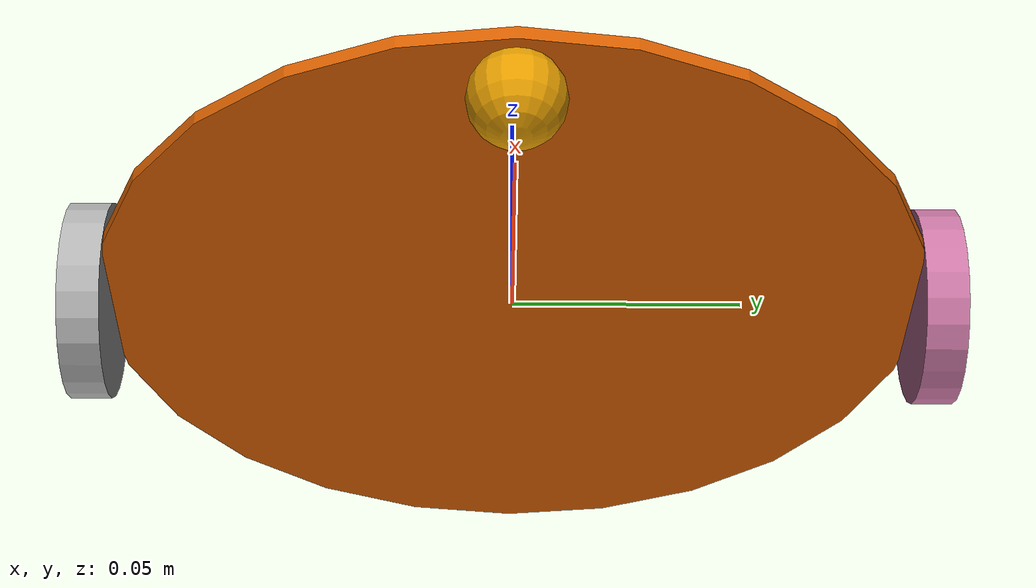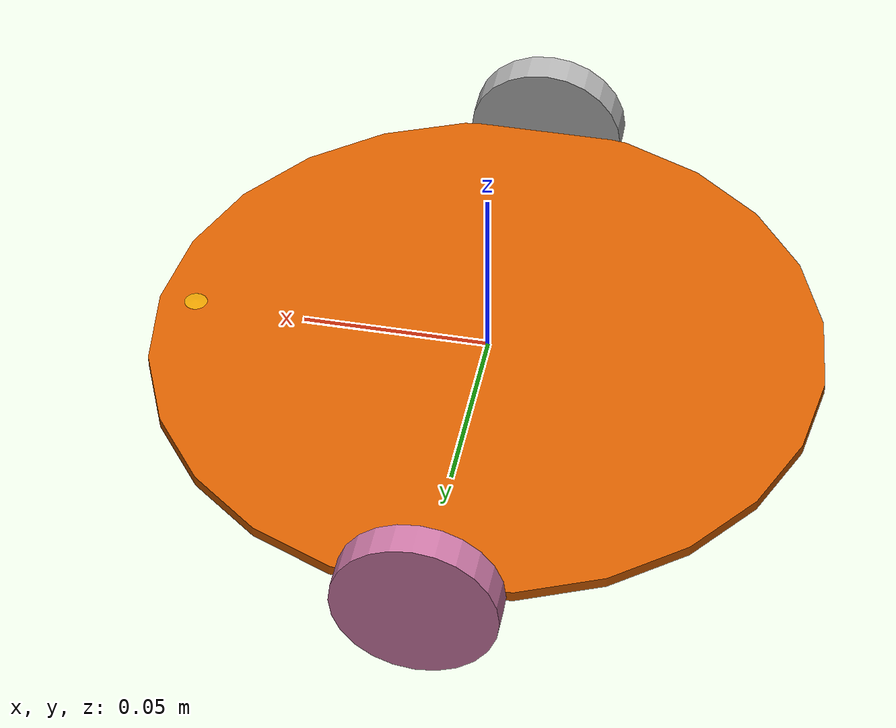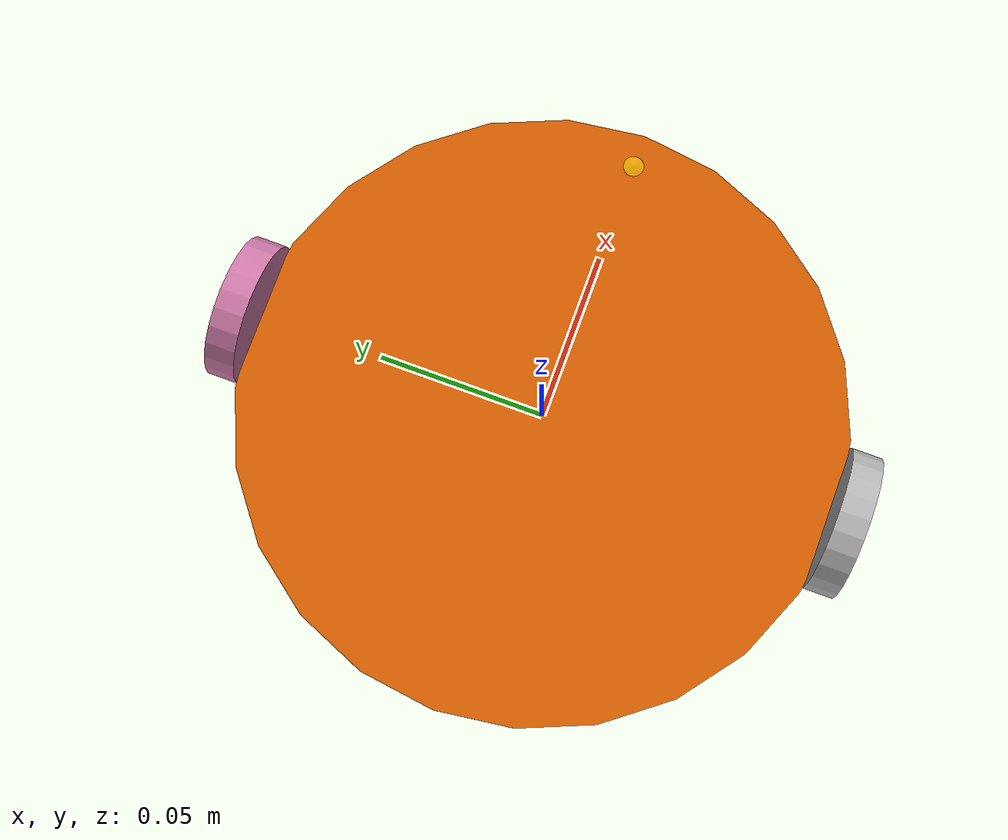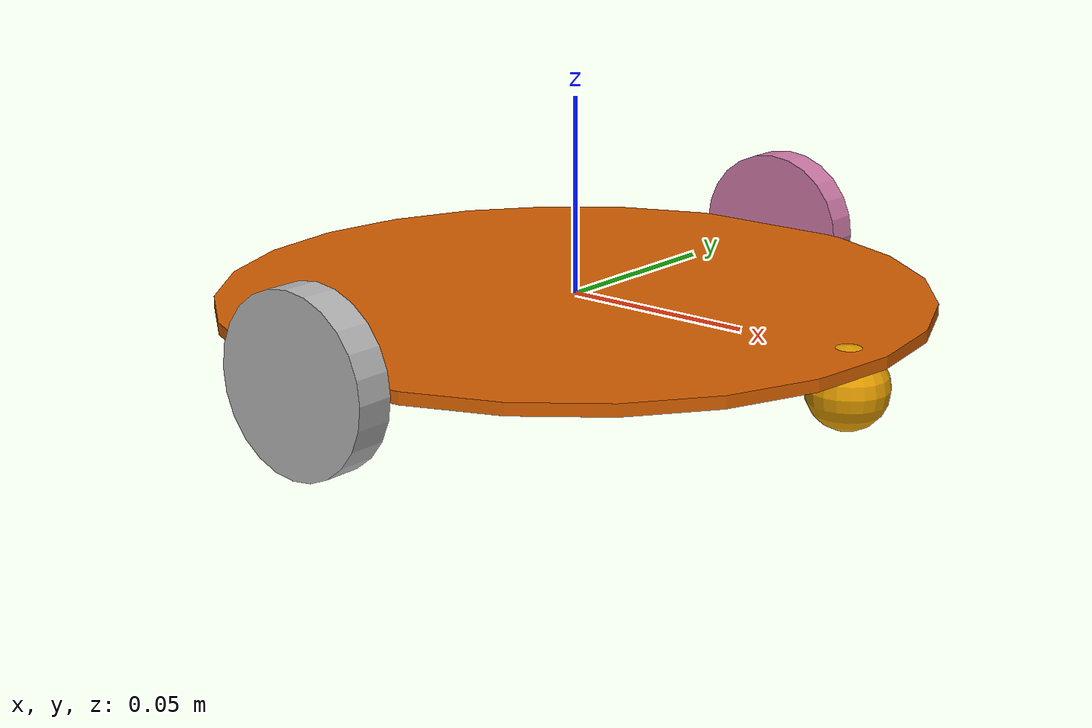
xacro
<?xml version='1.0'?>
<robot xmlns:xacro="http://www.ros.org/wiki/xacro" name="robot_car">

    <xacro:property name="blx" value="${0.10/10}" />  <!-- .origen chasis link.. -->
    <xacro:property name="bly" value="${0.08/10}" />  <!-- .origen chasis link.. -->
    <xacro:property name="blz" value="${0/10}" />   <!-- .origen chasis link.. -->
    <xacro:property name="radio" value="${0.9/10}" />   <!-- radio base .. -->
    <xacro:property name="ancho" value="${0.03/10}" /> <!-- ancho base.. -->

    <xacro:property name="olx" value="${0.0/10}" />     <!-- despalazamiento de la llantas en x .. -->
    <xacro:property name="oly" value="${0.92/10}" />   <!-- despalazamiento de la llantas en y. -->
    <xacro:property name="olz" value="${0.0/10}" />  <!-- despalazamiento de la llantas en z. -->

    <xacro:property name="crad" value="${0.43/2/10}" />  <!-- radio llanta. -->
    <xacro:property name="clen" value="${0.09/10}" />  <!-- ancho llanta -->

    <xacro:property name="srad" value="${0.2/2/10}" />  <!-- radio rueda loca -->
    <xacro:property name="slx" value="${(1.6/2)/10}" />  <!--  despalazamiento de la rueda loca en x.-->
    <xacro:property name="slz" value="${(0.08)/10}" />  <!--  despalazamiento de la rueda loca en z.-->

    <xacro:macro name="wheel_macro" params="p_name p_radius p_length">

        <link name="${p_name}">
            <visual>
            <!-- Box geometry -->
                <geometry>
                <!-- Unidades por defecto en metros -->
                    <cylinder radius="${p_radius}" length="${p_length}"/>
                </geometry>
                <origin xyz="0 0 0" rpy="-${pi/2} 0 0"/>
            </visual>
            <!-- Determina caracteristicas fisicas del robot -->
            <inertial>
                <mass value="1"/>
                <!-- Ubicacion del centro de masa -->
                <origin xyz="0 0 0" rpy="0 0 0"/>
                <!-- Tensor de inercia -->
                <inertia ixx="1" ixy="0" ixz="0" iyy="1" iyz="0" izz="1"/> <!-- buscar como es la inercia de una rueda -->
            </inertial>
            <!-- Esta parte define como interactua con otros objetos -->
            <collision>

            <!-- Unidades por defecto en metros -->
                <geometry>
                    <cylinder radius="${p_radius}" length="${p_length}"/>
                </geometry>
                <origin xyz="0 0 0" rpy="0 0 0"/>
            </collision>
        </link>
    </xacro:macro>

    <link name="world">
    </link>

    <joint name="world_worldx_joint" type="prismatic">
        <parent link="world"/>
        <child link="worldx"/>
        <axis xyz="1 0 0"/>
        <origin xyz="0 0 0" rpy="3.14 0 0"/>
        <limit effort="1" lower="-10" upper="10" velocity="10"/>
    </joint>

    <link name="worldx">
    </link>

    <joint name="worldx_worldy_joint" type="prismatic">
        <parent link="worldx"/>
        <child link="worldy"/>
        <axis xyz="0 1 0"/>
        <origin xyz="0 0 0" rpy="0 0 0"/>
        <limit effort="1" lower="-10" upper="10" velocity="10"/>
    </joint>

    <link name="worldy">
    </link>

    <joint name="worldy_worldth_joint" type="continuous">
        <parent link="worldy"/>
        <child link="worldth"/>
        <origin xyz="0 0 0" rpy="0 0 0"/>
        <axis xyz="0 0 1"/>
        <limit effort="1" lower="0" upper="${2*pi}" velocity="10"/>
    </joint>

    <link name="worldth">
    </link>

    <joint name="worldth_base_joint" type="fixed">
        <parent link="worldth"/>
        <child link="base_link"/>
        <origin xyz="0 0 0" rpy="0 3.1415 3.1415"/>
    </joint>

    <link name="base_link">
    </link>

    <joint name="base_chassis_joint" type="fixed">
        <parent link="base_link"/>
        <child link="chassis_link"/>
        <origin xyz="-${olx} 0 0" rpy="0 0 0"/>
    </joint>

    <link name="chassis_link">
        <visual>
            <!-- Box geometry -->
            <geometry>
                <!-- Unidades por defecto en metros -->
                <cylinder radius="${radio}" length="${ancho}"/>
            </geometry>

            <origin xyz="0 0 0" rpy="0 0 0"/>
        </visual>
        <!-- Determina caracteristicas fisicas del robot -->
        <inertial>
            <mass value="1"/>
            <!-- Ubicacion del centro de masa -->
            <origin xyz="0 0 0" rpy="0 0 0"/>
            <!-- Tensor de inercia -->
            <inertia ixx="1" ixy="0" ixz="0" iyy="1" iyz="0" izz="1"/>
        </inertial>
        <!-- Esta parte define como interactua con otros objetos -->
        <collision>

            <!-- Unidades por defecto en metros -->
            <geometry>
                 <cylinder radius="${radio}" length="${ancho}"/>
            </geometry>
            <origin xyz="${blx/2} 0 ${blz/2}" rpy="0 0 0"/>
        </collision>
    </link>
    <joint name="chassis_rwheel_joint" type="continuous">
        <parent link="chassis_link"/>
        <child link="rwheel_link"/>
        <origin xyz="${olx} ${oly} ${olz}" rpy="0 0 0"/>
        <axis xyz="0 1 0"/>
        <limit effort="1" lower="0" upper="${2*pi}" velocity="1"/>
        <dynamics damping="1" friction="1"/>
    </joint>

    <xacro:wheel_macro p_name ="rwheel_link"
                       p_radius ="${crad}"
                       p_length ="${clen}" />
     <joint name="chassis_lwheel_joint" type="continuous">
        <parent link="chassis_link"/>
        <child link="lwheel_link"/>
        <origin xyz="${olx} -${oly} ${olz}" rpy="0 0 0"/>
        <axis xyz="0 1 0"/>
        <limit effort="1" lower="0" upper="${2*pi}" velocity="1"/>
        <dynamics damping="1" friction="1"/>
    </joint>

    <xacro:wheel_macro p_name ="lwheel_link"
                       p_radius ="${crad}"
                       p_length ="${clen}" />

    <joint name="chassis_caster_joint" type="fixed">
        <parent link="chassis_link"/>
        <child link="caster_link"/>
        <origin xyz="${slx} 0 -${slz}" rpy="0 0 0"/>

    </joint>

    <link name="caster_link">
        <visual>
            <!-- Box geometry -->
            <geometry>
                <!-- Unidades por defecto en metros -->
                <sphere radius="${srad}"/>
            </geometry>

            <origin xyz="0 0 0" rpy="0 0 0"/>
        </visual>
        <!-- Determina caracteristicas fisicas del robot -->
        <inertial>
            <mass value="1"/>
            <!-- Ubicacion del centro de masa -->n
            <origin xyz="0 0 0" rpy="0 0 0"/>
            <!-- Tensor de inercia -->
            <inertia ixx="1" ixy="0" ixz="0" iyy="1" iyz="0" izz="1"/>
        </inertial>
        <!-- Esta parte define como interactua con otros objetos -->
        <collision>

            <!-- Unidades por defecto en metros -->
            <geometry>
                <sphere radius="${srad}"/>
            </geometry>
            <origin xyz="0 0 0" rpy="0 0 0"/>
        </collision>
    </link>

</robot>
